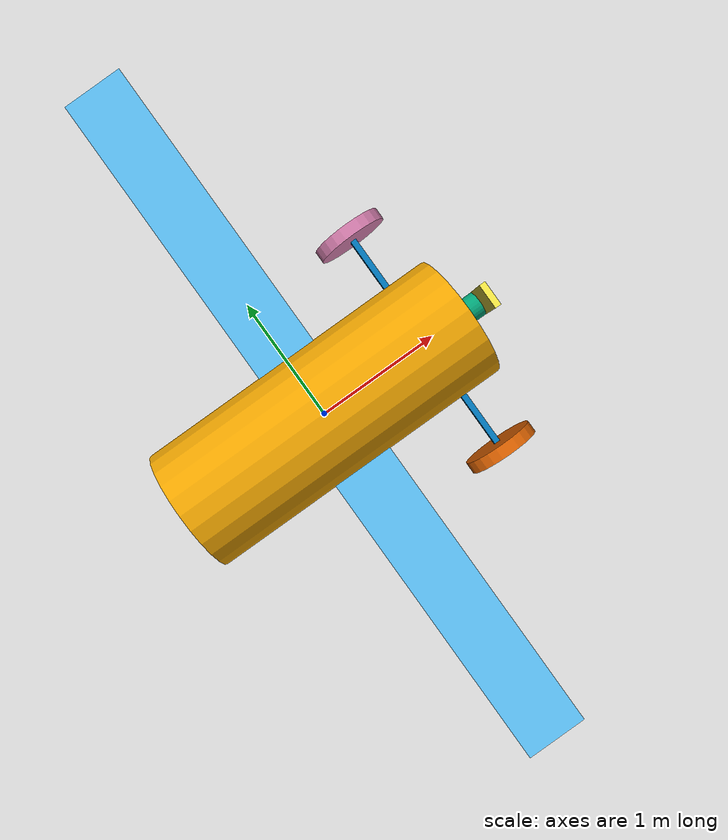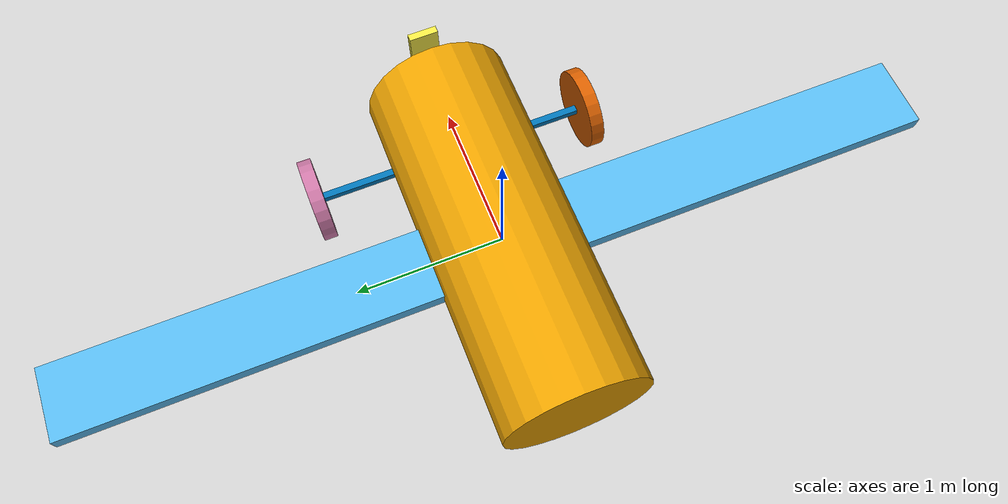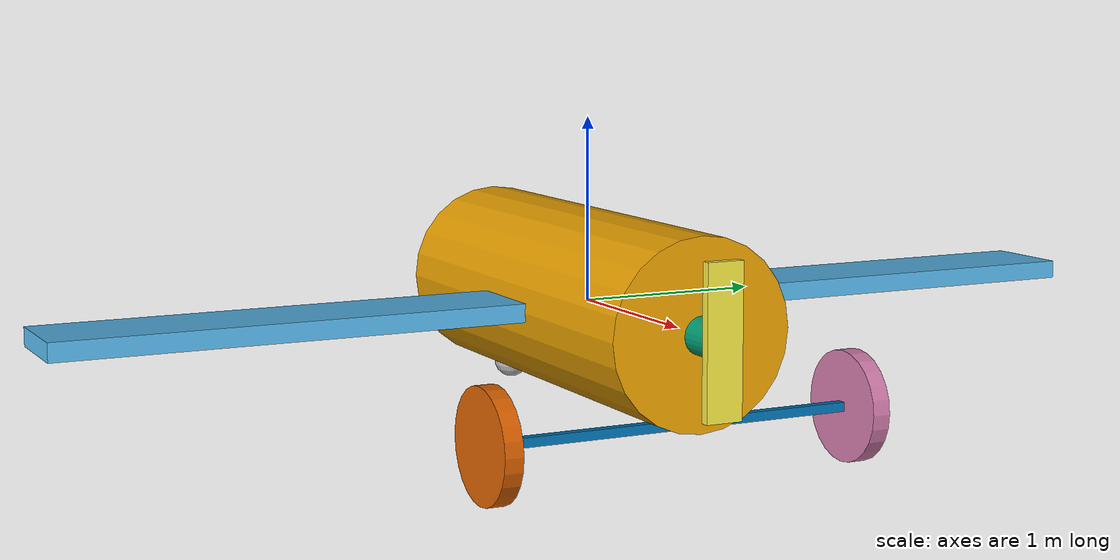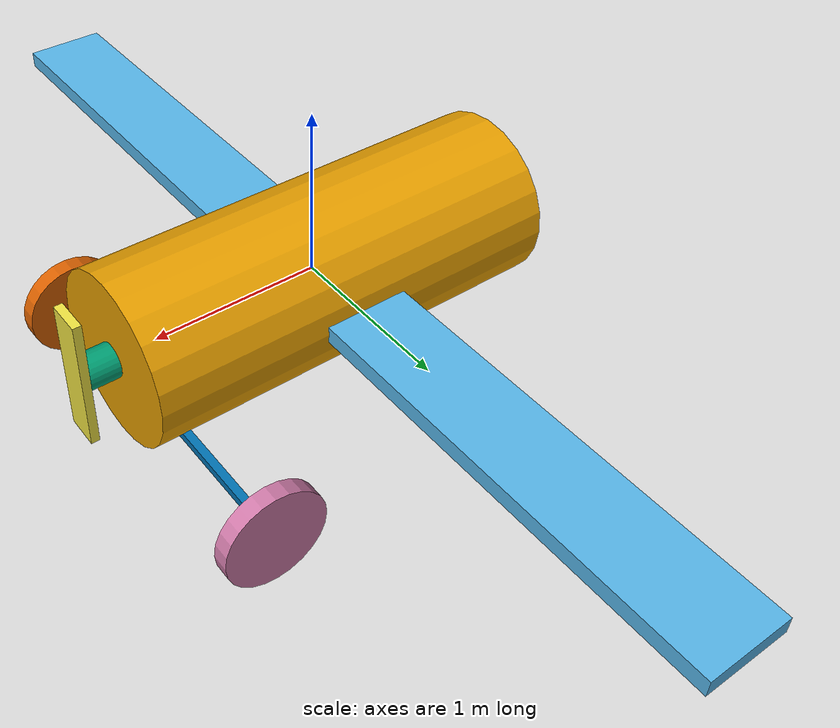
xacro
<robot name="plane" xmlns:xacro="http://www.ros.org/wiki/xacro">

    <link name="body_FLU">
        <visual>
            <origin rpy="0 -1.57 0 " />
            <geometry>
                <cylinder radius="0.5" length="2.5" />
            </geometry>
        </visual>

        <collision>
            <origin rpy="0 -1.57 0 " />
            <geometry>
                <cylinder radius="0.5" length="2.5" />
            </geometry>
        </collision>

        <inertial>
            <origin rpy="0 -1.57 0 " />
            <mass value="0.2" />
            <inertia ixx="0.116666666666" ixy="0" ixz="0" iyz="0"
                iyy="0.116666666666" izz="0.00416666666666" />
        </inertial>

    </link>
    ----------------------------------------------------------------------------  wings

    <link name="airfoil">
        <visual>
            <geometry>
                <box size="0.5 6 0.1" />
            </geometry>
        </visual>

        <collision>
            <geometry>
                <box size="0.5 6 0.1" />
            </geometry>
        </collision>

        <inertial>
            <mass value="2" />
            <inertia ixx="6.0016666666666" ixy="0" ixz="0" iyz="0"
                iyy="0.04333333333333" izz="6.0416666666666" />
        </inertial>
    </link>

    <joint name="body_FLUToWing" type="revolute">
        <origin xyz="0 0 0" rpy ="0 0 0"/>
        <parent link="body_FLU" />
        <child link="airfoil" />
        <limit effort="1000.0" lower="-0.000872665" upper="0.000872665" velocity="0.5"/>
    </joint>

 -----------------------------------------------------------------------------------propeller

    <link name="arm">
        <visual>
            <origin xyz="0 0 0.1" />
            <geometry>
                <cylinder radius="0.1" length="0.2" />
            </geometry>
        </visual>

        <collision>
            <origin xyz="0 0 0.1" />
            <geometry>
                <cylinder radius="0.1" length="0.2" />
            </geometry>
        </collision>

        <inertial>
            <origin xyz="0 0 0.1" />
            <mass value="0.1" />
            <inertia ixx="0.000583333" ixy="0" ixz="0" iyz="0"
                iyy="0.000583333" izz="0.00008333333" />
        </inertial>
    </link>

    <joint name="body_FLU_to_arm" type="continuous">
        <origin xyz="1.25 0 0" rpy="0 1.57  0" />
        <axis xyz="0 0 1" />
        <parent link="body_FLU" />
        <child link="arm" />
    </joint>

    <link name="propeller">
        <visual>
            <geometry>
                <box size="0.8 0.2 0.05" />
            </geometry>
        </visual>

        <collision>
            <geometry>
                <box size="0.8 0.2 0.05" />
            </geometry>
        </collision>

        <inertial>
            <mass value="0.1" />
            <inertia ixx="0.00035416666666" ixy="0" ixz="0" iyz="0"
                iyy=" 0.005354166666666" izz="0.005666666666" />
        </inertial>

    </link>

    <joint name="arm_to_propeller" type="fixed">
        <origin xyz="0 0 0.2" rpy="0 0 0" />
        <parent link="arm" />
        <child link="propeller" />
    </joint>

     ---------------------------------------------------------------------------front wheels

    <link name="wheel_base">
        <visual>
            <geometry>
                <box size="0.05 2 0.05" />
            </geometry>
        </visual>

        <collision>
            <geometry>
                <box size="0.05 2 0.05" />
            </geometry>
        </collision>

        <inertial>
            <mass value="0.1" />
            <inertia ixx="0.033354166666" ixy="0" ixz="0" iyz="0"
                iyy=" 0.00004166666" izz="0.033354166666" />
        </inertial>

    </link>

    <joint name=" body_FLU_to_wheel_base" type="fixed">
        <origin xyz="1 0 -0.5" rpy="0 0 0" />
        <parent link="body_FLU" />
        <child link="wheel_base" />
    </joint>

    <link name="left_wheel">
        <visual>
            <origin xyz="0 0 0.05" />
            <geometry>
                <cylinder radius="0.3" length="0.1" />
            </geometry>
        </visual>

        <collision>
            <origin xyz="0 0 0.05" />
            <geometry>
                <cylinder radius="0.3" length="0.1" />
            </geometry>
        </collision>

        <inertial>
            <origin xyz="0 0 0.05" />
            <mass value="0.1" />
            <inertia ixx="0.0023333333333333" ixy="0" ixz="0" iyz="0"
                iyy=" 0.0023333333333333" izz="0.00075" />
        </inertial>
    </link>

    <joint name="wheel_base_to_left_wheel" type="continuous">
        <origin xyz="0 -1 0" rpy="1.57 0 0" />
        <parent link="wheel_base" />
        <child link="left_wheel" />
        <axis xyz=" 0 0 1" />
    </joint>

    <link name="right_wheel">
        <visual>
            <origin xyz="0 0 -0.05" />
            <geometry>
                <cylinder radius="0.3" length="0.1" />
            </geometry>
        </visual>

        <collision>
            <origin xyz="0 0 -0.05" />
            <geometry>
                <cylinder radius="0.3" length="0.1" />
            </geometry>
        </collision>

        <inertial>
            <origin xyz="0 0 -0.05" />
            <mass value="0.1" />
            <inertia ixx="0.0023333333333333" ixy="0" ixz="0" iyz="0"
                iyy=" 0.0023333333333333" izz="0.00075" />
        </inertial>
    </link>

    <joint name="wheel_base_to_right_wheel" type="continuous">
        <origin xyz="0 1 0" rpy="1.57 0 0" />
        <parent link="wheel_base" />
        <child link="right_wheel" />
        <axis xyz=" 0 0 1" />
    </joint>

    ------------------------------------------------------------------------------------ rear sphere wheel

    <link name="rear_wheel">
        <visual>
            <geometry>
                <sphere radius="0.1" />
            </geometry>
        </visual>

        <collision>
            <geometry>
                <sphere radius="0.1" />
            </geometry>
        </collision>

        <inertial>
            <mass value="0.1" />
            <inertia ixx="0.0004" ixy="0" ixz="0" iyz="0"
                iyy=" 0.0004" izz="0.0004" />
        </inertial>
    </link>

    <joint name="body_FLU_to_rear_wheel" type="continuous">
        <origin xyz="-1 0 -0.5" />
        <axis xyz="0 1 0"/>
        <parent link="body_FLU" />
        <child link="rear_wheel" />
    </joint>

    <gazebo>
    <plugin name="model_plugin" filename="libmodel_plugin.so"/>
    <plugin name="joint_state_publisher" filename="libgazebo_ros_joint_state_publisher.so">
        <jointName>body_FLUToWing, body_FLU_to_arm, wheel_base_to_left_wheel, wheel_base_to_right_wheel, body_FLU_to_rear_wheel </jointName>
        <robotNamespace>last_letter_2</robotNamespace>
        <updateRate>0</updateRate>
    </plugin>
  </gazebo>

</robot>
